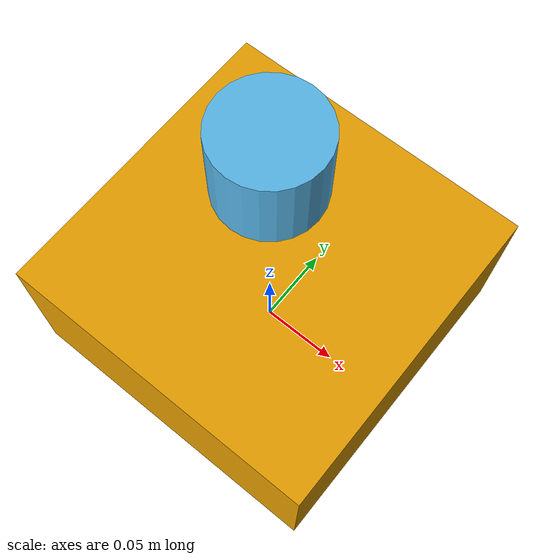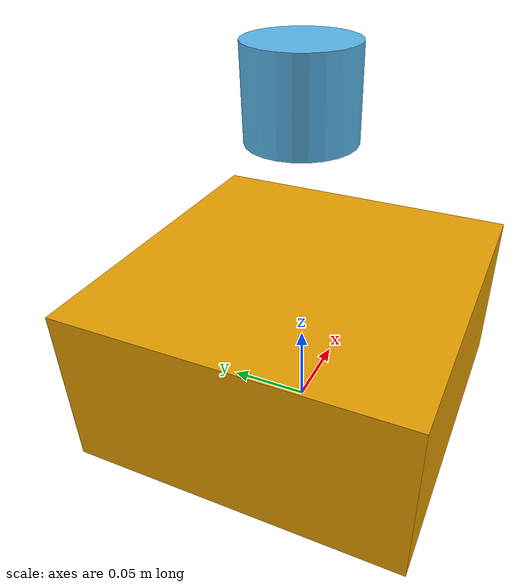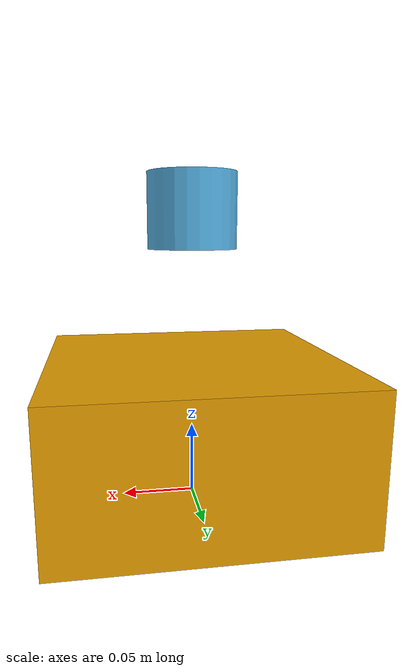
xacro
<?xml version="1.0"?>
<robot xmlns:xacro="http://ros.org/wiki/xacro" name="my_robot">

  <link name="base_link">
    <visual>
      <geometry>
        <box size="0.2 0.2 0.1"/>
      </geometry>
      <origin xyz="0 0 0.05"/>
    </visual>
  </link>

  <link name="laser">
    <visual>
      <geometry>
        <cylinder radius="0.03" length="0.05"/>
      </geometry>
      <origin xyz="0 0 0.1" rpy="0 0 0"/>
    </visual>
  </link>

  <joint name="laser_joint" type="fixed">
    <parent link="base_link"/>
    <child link="laser"/>
    <origin xyz="0 0 0.1" rpy="0 0 0"/>
  </joint>

</robot>
